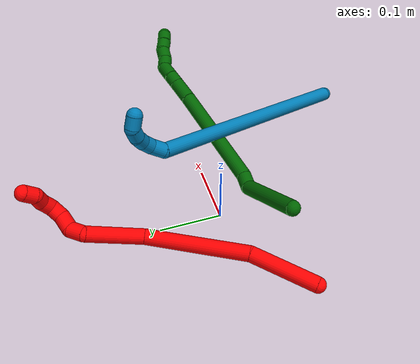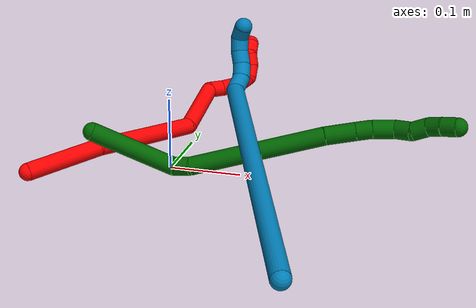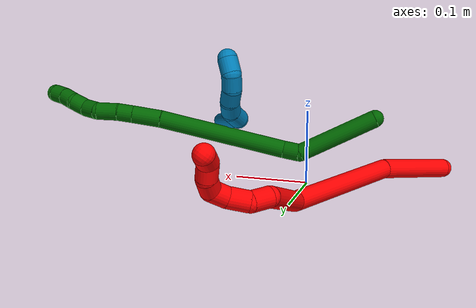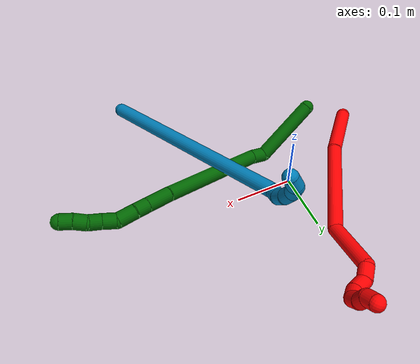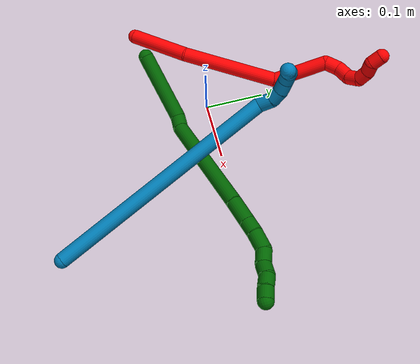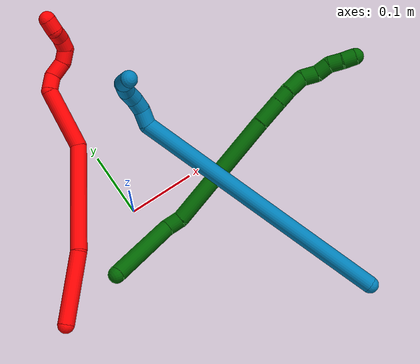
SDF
<sdf version="1.7">
 <world name="default">
  <model name="2">
   <static>0</static>
   <link name="2">
    <collision name="collision-cylinder-e_1_1_4">
     <pose>0.020639 0.041918 0.026023 -1.01521 0.3962 -0.222382</pose>
     <geometry><cylinder><radius>0.0125</radius><length>0.106963</length></cylinder></geometry>
     <surface>
      <friction><ode><mu>1.16</mu><mu2>1.16</mu2><slip1>0</slip1><slip2>0</slip2></ode></friction>
      <contact><ode><kp>1e+06</kp><kd>1</kd><max_vel>0</max_vel><min_depth>0.001</min_depth></ode></contact>
     </surface>
    </collision>
    <visual name="visual-cylinder-e_1_1_4">
     <pose>0.020639 0.041918 0.026023 -1.01521 0.3962 -0.222382</pose>
     <geometry><cylinder><radius>0.0125</radius><length>0.106963</length></cylinder></geometry>
     <material><ambient>1 0 0 1</ambient></material>
    </visual>
    <collision name="collision-cylinder-e_2_4_5">
     <pose>0.08618 0.13313 0.102124 -0.777509 0.568593 -0.238246</pose>
     <geometry><cylinder><radius>0.0125</radius><length>0.166779</length></cylinder></geometry>
     <surface>
      <friction><ode><mu>1.16</mu><mu2>1.16</mu2><slip1>0</slip1><slip2>0</slip2></ode></friction>
      <contact><ode><kp>1e+06</kp><kd>1</kd><max_vel>0</max_vel><min_depth>0.001</min_depth></ode></contact>
     </surface>
    </collision>
    <visual name="visual-cylinder-e_2_4_5">
     <pose>0.08618 0.13313 0.102124 -0.777509 0.568593 -0.238246</pose>
     <geometry><cylinder><radius>0.0125</radius><length>0.166779</length></cylinder></geometry>
     <material><ambient>1 0 0 1</ambient></material>
    </visual>
    <collision name="collision-cylinder-e_3_5_6">
     <pose>0.170591 0.206914 0.156373 -1.40211 1.00949 -0.872727</pose>
     <geometry><cylinder><radius>0.0125</radius><length>0.093343</length></cylinder></geometry>
     <surface>
      <friction><ode><mu>1.16</mu><mu2>1.16</mu2><slip1>0</slip1><slip2>0</slip2></ode></friction>
      <contact><ode><kp>1e+06</kp><kd>1</kd><max_vel>0</max_vel><min_depth>0.001</min_depth></ode></contact>
     </surface>
    </collision>
    <visual name="visual-cylinder-e_3_5_6">
     <pose>0.170591 0.206914 0.156373 -1.40211 1.00949 -0.872727</pose>
     <geometry><cylinder><radius>0.0125</radius><length>0.093343</length></cylinder></geometry>
     <material><ambient>1 0 0 1</ambient></material>
    </visual>
    <collision name="collision-cylinder-e_4_6_7">
     <pose>0.214965 0.239687 0.16857 -0.80116 0.399091 -0.170869</pose>
     <geometry><cylinder><radius>0.0125</radius><length>0.025035</length></cylinder></geometry>
     <surface>
      <friction><ode><mu>1.16</mu><mu2>1.16</mu2><slip1>0</slip1><slip2>0</slip2></ode></friction>
      <contact><ode><kp>1e+06</kp><kd>1</kd><max_vel>0</max_vel><min_depth>0.001</min_depth></ode></contact>
     </surface>
    </collision>
    <visual name="visual-cylinder-e_4_6_7">
     <pose>0.214965 0.239687 0.16857 -0.80116 0.399091 -0.170869</pose>
     <geometry><cylinder><radius>0.0125</radius><length>0.025035</length></cylinder></geometry>
     <material><ambient>1 0 0 1</ambient></material>
    </visual>
    <collision name="collision-cylinder-e_5_7_8">
     <pose>0.218683 0.259887 0.18207 -1.14022 -0.087178 0.055912</pose>
     <geometry><cylinder><radius>0.0125</radius><length>0.026329</length></cylinder></geometry>
     <surface>
      <friction><ode><mu>1.16</mu><mu2>1.16</mu2><slip1>0</slip1><slip2>0</slip2></ode></friction>
      <contact><ode><kp>1e+06</kp><kd>1</kd><max_vel>0</max_vel><min_depth>0.001</min_depth></ode></contact>
     </surface>
    </collision>
    <visual name="visual-cylinder-e_5_7_8">
     <pose>0.218683 0.259887 0.18207 -1.14022 -0.087178 0.055912</pose>
     <geometry><cylinder><radius>0.0125</radius><length>0.026329</length></cylinder></geometry>
     <material><ambient>1 0 0 1</ambient></material>
    </visual>
    <collision name="collision-cylinder-e_6_8_9">
     <pose>0.220641 0.281717 0.189249 -1.40045 0.299357 -0.252806</pose>
     <geometry><cylinder><radius>0.0125</radius><length>0.021053</length></cylinder></geometry>
     <surface>
      <friction><ode><mu>1.16</mu><mu2>1.16</mu2><slip1>0</slip1><slip2>0</slip2></ode></friction>
      <contact><ode><kp>1e+06</kp><kd>1</kd><max_vel>0</max_vel><min_depth>0.001</min_depth></ode></contact>
     </surface>
    </collision>
    <visual name="visual-cylinder-e_6_8_9">
     <pose>0.220641 0.281717 0.189249 -1.40045 0.299357 -0.252806</pose>
     <geometry><cylinder><radius>0.0125</radius><length>0.021053</length></cylinder></geometry>
     <material><ambient>1 0 0 1</ambient></material>
    </visual>
    <collision name="collision-cylinder-e_7_9_10">
     <pose>0.229999 0.298334 0.186585 -2.14833 0.663363 -1.13224</pose>
     <geometry><cylinder><radius>0.0125</radius><length>0.020312</length></cylinder></geometry>
     <surface>
      <friction><ode><mu>1.16</mu><mu2>1.16</mu2><slip1>0</slip1><slip2>0</slip2></ode></friction>
      <contact><ode><kp>1e+06</kp><kd>1</kd><max_vel>0</max_vel><min_depth>0.001</min_depth></ode></contact>
     </surface>
    </collision>
    <visual name="visual-cylinder-e_7_9_10">
     <pose>0.229999 0.298334 0.186585 -2.14833 0.663363 -1.13224</pose>
     <geometry><cylinder><radius>0.0125</radius><length>0.020312</length></cylinder></geometry>
     <material><ambient>1 0 0 1</ambient></material>
    </visual>
    <collision name="collision-cylinder-e_8_10_11">
     <pose>0.240359 0.310137 0.174617 -2.55071 0.42184 -1.22613</pose>
     <geometry><cylinder><radius>0.0125</radius><length>0.02006</length></cylinder></geometry>
     <surface>
      <friction><ode><mu>1.16</mu><mu2>1.16</mu2><slip1>0</slip1><slip2>0</slip2></ode></friction>
      <contact><ode><kp>1e+06</kp><kd>1</kd><max_vel>0</max_vel><min_depth>0.001</min_depth></ode></contact>
     </surface>
    </collision>
    <visual name="visual-cylinder-e_8_10_11">
     <pose>0.240359 0.310137 0.174617 -2.55071 0.42184 -1.22613</pose>
     <geometry><cylinder><radius>0.0125</radius><length>0.02006</length></cylinder></geometry>
     <material><ambient>1 0 0 1</ambient></material>
    </visual>
    <collision name="collision-cylinder-e_9_11_2">
     <pose>0.252441 0.320739 0.164303 -2.029 0.914829 -1.33922</pose>
     <geometry><cylinder><radius>0.0125</radius><length>0.020126</length></cylinder></geometry>
     <surface>
      <friction><ode><mu>1.16</mu><mu2>1.16</mu2><slip1>0</slip1><slip2>0</slip2></ode></friction>
      <contact><ode><kp>1e+06</kp><kd>1</kd><max_vel>0</max_vel><min_depth>0.001</min_depth></ode></contact>
     </surface>
    </collision>
    <visual name="visual-cylinder-e_9_11_2">
     <pose>0.252441 0.320739 0.164303 -2.029 0.914829 -1.33922</pose>
     <geometry><cylinder><radius>0.0125</radius><length>0.020126</length></cylinder></geometry>
     <material><ambient>1 0 0 1</ambient></material>
    </visual>
    <collision name="collision-sphere-2">
     <pose>0.260415 0.326244 0.161588 0 -0 0</pose>
     <geometry><sphere><radius>0.0125</radius></sphere></geometry>
     <surface>
      <friction><ode><mu>1.16</mu><mu2>1.16</mu2><slip1>0</slip1><slip2>0</slip2></ode></friction>
      <contact><ode><kp>1e+06</kp><kd>1</kd><max_vel>0</max_vel><min_depth>0.001</min_depth></ode></contact>
     </surface>
    </collision>
    <visual name="visual-sphere-2">
     <pose>0.260415 0.326244 0.161588 0 -0 0</pose>
     <geometry><sphere><radius>0.0125</radius></sphere></geometry>
     <material><ambient>1 0 0 1</ambient></material>
    </visual>
    <collision name="collision-sphere-11">
     <pose>0.244466 0.315235 0.167018 0 -0 0</pose>
     <geometry><sphere><radius>0.0125</radius></sphere></geometry>
     <surface>
      <friction><ode><mu>1.16</mu><mu2>1.16</mu2><slip1>0</slip1><slip2>0</slip2></ode></friction>
      <contact><ode><kp>1e+06</kp><kd>1</kd><max_vel>0</max_vel><min_depth>0.001</min_depth></ode></contact>
     </surface>
    </collision>
    <visual name="visual-sphere-11">
     <pose>0.244466 0.315235 0.167018 0 -0 0</pose>
     <geometry><sphere><radius>0.0125</radius></sphere></geometry>
     <material><ambient>1 0 0 1</ambient></material>
    </visual>
    <collision name="collision-sphere-10">
     <pose>0.236253 0.305039 0.182216 0 -0 0</pose>
     <geometry><sphere><radius>0.0125</radius></sphere></geometry>
     <surface>
      <friction><ode><mu>1.16</mu><mu2>1.16</mu2><slip1>0</slip1><slip2>0</slip2></ode></friction>
      <contact><ode><kp>1e+06</kp><kd>1</kd><max_vel>0</max_vel><min_depth>0.001</min_depth></ode></contact>
     </surface>
    </collision>
    <visual name="visual-sphere-10">
     <pose>0.236253 0.305039 0.182216 0 -0 0</pose>
     <geometry><sphere><radius>0.0125</radius></sphere></geometry>
     <material><ambient>1 0 0 1</ambient></material>
    </visual>
    <collision name="collision-sphere-9">
     <pose>0.223745 0.29163 0.190954 0 -0 0</pose>
     <geometry><sphere><radius>0.0125</radius></sphere></geometry>
     <surface>
      <friction><ode><mu>1.16</mu><mu2>1.16</mu2><slip1>0</slip1><slip2>0</slip2></ode></friction>
      <contact><ode><kp>1e+06</kp><kd>1</kd><max_vel>0</max_vel><min_depth>0.001</min_depth></ode></contact>
     </surface>
    </collision>
    <visual name="visual-sphere-9">
     <pose>0.223745 0.29163 0.190954 0 -0 0</pose>
     <geometry><sphere><radius>0.0125</radius></sphere></geometry>
     <material><ambient>1 0 0 1</ambient></material>
    </visual>
    <collision name="collision-sphere-4">
     <pose>0.041279 0.083836 0.052046 0 -0 0</pose>
     <geometry><sphere><radius>0.0125</radius></sphere></geometry>
     <surface>
      <friction><ode><mu>1.16</mu><mu2>1.16</mu2><slip1>0</slip1><slip2>0</slip2></ode></friction>
      <contact><ode><kp>1e+06</kp><kd>1</kd><max_vel>0</max_vel><min_depth>0.001</min_depth></ode></contact>
     </surface>
    </collision>
    <visual name="visual-sphere-4">
     <pose>0.041279 0.083836 0.052046 0 -0 0</pose>
     <geometry><sphere><radius>0.0125</radius></sphere></geometry>
     <material><ambient>1 0 0 1</ambient></material>
    </visual>
    <collision name="collision-sphere-1">
     <geometry><sphere><radius>0.0125</radius></sphere></geometry>
     <surface>
      <friction><ode><mu>1.16</mu><mu2>1.16</mu2><slip1>0</slip1><slip2>0</slip2></ode></friction>
      <contact><ode><kp>1e+06</kp><kd>1</kd><max_vel>0</max_vel><min_depth>0.001</min_depth></ode></contact>
     </surface>
    </collision>
    <visual name="visual-sphere-1">
     <geometry><sphere><radius>0.0125</radius></sphere></geometry>
     <material><ambient>1 0 0 1</ambient></material>
    </visual>
    <collision name="collision-sphere-8">
     <pose>0.217536 0.271805 0.187544 0 -0 0</pose>
     <geometry><sphere><radius>0.0125</radius></sphere></geometry>
     <surface>
      <friction><ode><mu>1.16</mu><mu2>1.16</mu2><slip1>0</slip1><slip2>0</slip2></ode></friction>
      <contact><ode><kp>1e+06</kp><kd>1</kd><max_vel>0</max_vel><min_depth>0.001</min_depth></ode></contact>
     </surface>
    </collision>
    <visual name="visual-sphere-8">
     <pose>0.217536 0.271805 0.187544 0 -0 0</pose>
     <geometry><sphere><radius>0.0125</radius></sphere></geometry>
     <material><ambient>1 0 0 1</ambient></material>
    </visual>
    <collision name="collision-sphere-5">
     <pose>0.13108 0.182424 0.152202 0 -0 0</pose>
     <geometry><sphere><radius>0.0125</radius></sphere></geometry>
     <surface>
      <friction><ode><mu>1.16</mu><mu2>1.16</mu2><slip1>0</slip1><slip2>0</slip2></ode></friction>
      <contact><ode><kp>1e+06</kp><kd>1</kd><max_vel>0</max_vel><min_depth>0.001</min_depth></ode></contact>
     </surface>
    </collision>
    <visual name="visual-sphere-5">
     <pose>0.13108 0.182424 0.152202 0 -0 0</pose>
     <geometry><sphere><radius>0.0125</radius></sphere></geometry>
     <material><ambient>1 0 0 1</ambient></material>
    </visual>
    <collision name="collision-sphere-6">
     <pose>0.210101 0.231404 0.160544 0 -0 0</pose>
     <geometry><sphere><radius>0.0125</radius></sphere></geometry>
     <surface>
      <friction><ode><mu>1.16</mu><mu2>1.16</mu2><slip1>0</slip1><slip2>0</slip2></ode></friction>
      <contact><ode><kp>1e+06</kp><kd>1</kd><max_vel>0</max_vel><min_depth>0.001</min_depth></ode></contact>
     </surface>
    </collision>
    <visual name="visual-sphere-6">
     <pose>0.210101 0.231404 0.160544 0 -0 0</pose>
     <geometry><sphere><radius>0.0125</radius></sphere></geometry>
     <material><ambient>1 0 0 1</ambient></material>
    </visual>
    <collision name="collision-sphere-7">
     <pose>0.219829 0.24797 0.176596 0 -0 0</pose>
     <geometry><sphere><radius>0.0125</radius></sphere></geometry>
     <surface>
      <friction><ode><mu>1.16</mu><mu2>1.16</mu2><slip1>0</slip1><slip2>0</slip2></ode></friction>
      <contact><ode><kp>1e+06</kp><kd>1</kd><max_vel>0</max_vel><min_depth>0.001</min_depth></ode></contact>
     </surface>
    </collision>
    <visual name="visual-sphere-7">
     <pose>0.219829 0.24797 0.176596 0 -0 0</pose>
     <geometry><sphere><radius>0.0125</radius></sphere></geometry>
     <material><ambient>1 0 0 1</ambient></material>
    </visual>
    <inertial>
     <pose>0.125725 0.167023 0.116019 0 -0 0</pose>
     <mass>0.5</mass>
     <inertia>
      <ixx>0.000337</ixx>
      <ixy>0</ixy>
      <ixz>0</ixz>
      <iyy>0.00032</iyy>
      <iyz>0</iyz>
      <izz>-0.000665</izz>
     </inertia>
    </inertial>
   </link>
   <pose>-0.173597 -0.091282 0.011487 2.49207 -0.109748 2.01128</pose>
  </model>
  <model name="6">
   <static>0</static>
   <link name="6">
    <collision name="collision-cylinder-e_1_1_4">
     <pose>-0.00577 0.012099 -0.056625 -2.93109 -0.099313 0.87942</pose>
     <geometry><cylinder><radius>0.0125</radius><length>0.11638</length></cylinder></geometry>
     <surface>
      <friction><ode><mu>1.16</mu><mu2>1.16</mu2><slip1>0</slip1><slip2>0</slip2></ode></friction>
      <contact><ode><kp>1e+06</kp><kd>1</kd><max_vel>0</max_vel><min_depth>0.001</min_depth></ode></contact>
     </surface>
    </collision>
    <visual name="visual-cylinder-e_1_1_4">
     <pose>-0.00577 0.012099 -0.056625 -2.93109 -0.099313 0.87942</pose>
     <geometry><cylinder><radius>0.0125</radius><length>0.11638</length></cylinder></geometry>
     <material><ambient>0 0.392157 0.003922 1</ambient></material>
    </visual>
    <collision name="collision-cylinder-e_2_4_5">
     <pose>-0.005911 0.023276 -0.123942 3.05558 0.482969 2.79563</pose>
     <geometry><cylinder><radius>0.0125</radius><length>0.024235</length></cylinder></geometry>
     <surface>
      <friction><ode><mu>1.16</mu><mu2>1.16</mu2><slip1>0</slip1><slip2>0</slip2></ode></friction>
      <contact><ode><kp>1e+06</kp><kd>1</kd><max_vel>0</max_vel><min_depth>0.001</min_depth></ode></contact>
     </surface>
    </collision>
    <visual name="visual-cylinder-e_2_4_5">
     <pose>-0.005911 0.023276 -0.123942 3.05558 0.482969 2.79563</pose>
     <geometry><cylinder><radius>0.0125</radius><length>0.024235</length></cylinder></geometry>
     <material><ambient>0 0.392157 0.003922 1</ambient></material>
    </visual>
    <collision name="collision-cylinder-e_3_5_6">
     <pose>0.049972 0.041485 -0.208136 -2.88697 0.584545 -2.33714</pose>
     <geometry><cylinder><radius>0.0125</radius><length>0.182147</length></cylinder></geometry>
     <surface>
      <friction><ode><mu>1.16</mu><mu2>1.16</mu2><slip1>0</slip1><slip2>0</slip2></ode></friction>
      <contact><ode><kp>1e+06</kp><kd>1</kd><max_vel>0</max_vel><min_depth>0.001</min_depth></ode></contact>
     </surface>
    </collision>
    <visual name="visual-cylinder-e_3_5_6">
     <pose>0.049972 0.041485 -0.208136 -2.88697 0.584545 -2.33714</pose>
     <geometry><cylinder><radius>0.0125</radius><length>0.182147</length></cylinder></geometry>
     <material><ambient>0 0.392157 0.003922 1</ambient></material>
    </visual>
    <collision name="collision-cylinder-e_4_6_7">
     <pose>0.110033 0.064739 -0.298863 -2.90664 0.505638 -2.28456</pose>
     <geometry><cylinder><radius>0.0125</radius><length>0.040486</length></cylinder></geometry>
     <surface>
      <friction><ode><mu>1.16</mu><mu2>1.16</mu2><slip1>0</slip1><slip2>0</slip2></ode></friction>
      <contact><ode><kp>1e+06</kp><kd>1</kd><max_vel>0</max_vel><min_depth>0.001</min_depth></ode></contact>
     </surface>
    </collision>
    <visual name="visual-cylinder-e_4_6_7">
     <pose>0.110033 0.064739 -0.298863 -2.90664 0.505638 -2.28456</pose>
     <geometry><cylinder><radius>0.0125</radius><length>0.040486</length></cylinder></geometry>
     <material><ambient>0 0.392157 0.003922 1</ambient></material>
    </visual>
    <collision name="collision-cylinder-e_5_7_8">
     <pose>0.124955 0.071089 -0.325367 -2.90609 0.492158 -2.26126</pose>
     <geometry><cylinder><radius>0.0125</radius><length>0.021659</length></cylinder></geometry>
     <surface>
      <friction><ode><mu>1.16</mu><mu2>1.16</mu2><slip1>0</slip1><slip2>0</slip2></ode></friction>
      <contact><ode><kp>1e+06</kp><kd>1</kd><max_vel>0</max_vel><min_depth>0.001</min_depth></ode></contact>
     </surface>
    </collision>
    <visual name="visual-cylinder-e_5_7_8">
     <pose>0.124955 0.071089 -0.325367 -2.90609 0.492158 -2.26126</pose>
     <geometry><cylinder><radius>0.0125</radius><length>0.021659</length></cylinder></geometry>
     <material><ambient>0 0.392157 0.003922 1</ambient></material>
    </visual>
    <collision name="collision-cylinder-e_6_8_9">
     <pose>0.135596 0.075475 -0.348352 -2.98531 0.378868 -2.36617</pose>
     <geometry><cylinder><radius>0.0125</radius><length>0.029865</length></cylinder></geometry>
     <surface>
      <friction><ode><mu>1.16</mu><mu2>1.16</mu2><slip1>0</slip1><slip2>0</slip2></ode></friction>
      <contact><ode><kp>1e+06</kp><kd>1</kd><max_vel>0</max_vel><min_depth>0.001</min_depth></ode></contact>
     </surface>
    </collision>
    <visual name="visual-cylinder-e_6_8_9">
     <pose>0.135596 0.075475 -0.348352 -2.98531 0.378868 -2.36617</pose>
     <geometry><cylinder><radius>0.0125</radius><length>0.029865</length></cylinder></geometry>
     <material><ambient>0 0.392157 0.003922 1</ambient></material>
    </visual>
    <collision name="collision-cylinder-e_7_9_10">
     <pose>0.145898 0.073336 -0.371907 2.73016 0.418363 1.58798</pose>
     <geometry><cylinder><radius>0.0125</radius><length>0.023526</length></cylinder></geometry>
     <surface>
      <friction><ode><mu>1.16</mu><mu2>1.16</mu2><slip1>0</slip1><slip2>0</slip2></ode></friction>
      <contact><ode><kp>1e+06</kp><kd>1</kd><max_vel>0</max_vel><min_depth>0.001</min_depth></ode></contact>
     </surface>
    </collision>
    <visual name="visual-cylinder-e_7_9_10">
     <pose>0.145898 0.073336 -0.371907 2.73016 0.418363 1.58798</pose>
     <geometry><cylinder><radius>0.0125</radius><length>0.023526</length></cylinder></geometry>
     <material><ambient>0 0.392157 0.003922 1</ambient></material>
    </visual>
    <collision name="collision-cylinder-e_8_10_11">
     <pose>0.158056 0.0683 -0.389597 3.04781 0.753062 2.90533</pose>
     <geometry><cylinder><radius>0.0125</radius><length>0.02158</length></cylinder></geometry>
     <surface>
      <friction><ode><mu>1.16</mu><mu2>1.16</mu2><slip1>0</slip1><slip2>0</slip2></ode></friction>
      <contact><ode><kp>1e+06</kp><kd>1</kd><max_vel>0</max_vel><min_depth>0.001</min_depth></ode></contact>
     </surface>
    </collision>
    <visual name="visual-cylinder-e_8_10_11">
     <pose>0.158056 0.0683 -0.389597 3.04781 0.753062 2.90533</pose>
     <geometry><cylinder><radius>0.0125</radius><length>0.02158</length></cylinder></geometry>
     <material><ambient>0 0.392157 0.003922 1</ambient></material>
    </visual>
    <collision name="collision-cylinder-e_9_11_12">
     <pose>0.170912 0.063365 -0.404718 2.61872 0.577465 1.6751</pose>
     <geometry><cylinder><radius>0.0125</radius><length>0.020066</length></cylinder></geometry>
     <surface>
      <friction><ode><mu>1.16</mu><mu2>1.16</mu2><slip1>0</slip1><slip2>0</slip2></ode></friction>
      <contact><ode><kp>1e+06</kp><kd>1</kd><max_vel>0</max_vel><min_depth>0.001</min_depth></ode></contact>
     </surface>
    </collision>
    <visual name="visual-cylinder-e_9_11_12">
     <pose>0.170912 0.063365 -0.404718 2.61872 0.577465 1.6751</pose>
     <geometry><cylinder><radius>0.0125</radius><length>0.020066</length></cylinder></geometry>
     <material><ambient>0 0.392157 0.003922 1</ambient></material>
    </visual>
    <collision name="collision-cylinder-e_10_12_2">
     <pose>0.181109 0.055907 -0.420226 2.76425 0.490109 1.8374</pose>
     <geometry><cylinder><radius>0.0125</radius><length>0.020057</length></cylinder></geometry>
     <surface>
      <friction><ode><mu>1.16</mu><mu2>1.16</mu2><slip1>0</slip1><slip2>0</slip2></ode></friction>
      <contact><ode><kp>1e+06</kp><kd>1</kd><max_vel>0</max_vel><min_depth>0.001</min_depth></ode></contact>
     </surface>
    </collision>
    <visual name="visual-cylinder-e_10_12_2">
     <pose>0.181109 0.055907 -0.420226 2.76425 0.490109 1.8374</pose>
     <geometry><cylinder><radius>0.0125</radius><length>0.020057</length></cylinder></geometry>
     <material><ambient>0 0.392157 0.003922 1</ambient></material>
    </visual>
    <collision name="collision-sphere-2">
     <pose>0.18583 0.052647 -0.428452 0 -0 0</pose>
     <geometry><sphere><radius>0.0125</radius></sphere></geometry>
     <surface>
      <friction><ode><mu>1.16</mu><mu2>1.16</mu2><slip1>0</slip1><slip2>0</slip2></ode></friction>
      <contact><ode><kp>1e+06</kp><kd>1</kd><max_vel>0</max_vel><min_depth>0.001</min_depth></ode></contact>
     </surface>
    </collision>
    <visual name="visual-sphere-2">
     <pose>0.18583 0.052647 -0.428452 0 -0 0</pose>
     <geometry><sphere><radius>0.0125</radius></sphere></geometry>
     <material><ambient>0 0.392157 0.003922 1</ambient></material>
    </visual>
    <collision name="collision-sphere-12">
     <pose>0.176389 0.059167 -0.412 0 -0 0</pose>
     <geometry><sphere><radius>0.0125</radius></sphere></geometry>
     <surface>
      <friction><ode><mu>1.16</mu><mu2>1.16</mu2><slip1>0</slip1><slip2>0</slip2></ode></friction>
      <contact><ode><kp>1e+06</kp><kd>1</kd><max_vel>0</max_vel><min_depth>0.001</min_depth></ode></contact>
     </surface>
    </collision>
    <visual name="visual-sphere-12">
     <pose>0.176389 0.059167 -0.412 0 -0 0</pose>
     <geometry><sphere><radius>0.0125</radius></sphere></geometry>
     <material><ambient>0 0.392157 0.003922 1</ambient></material>
    </visual>
    <collision name="collision-sphere-11">
     <pose>0.165435 0.067563 -0.397435 0 -0 0</pose>
     <geometry><sphere><radius>0.0125</radius></sphere></geometry>
     <surface>
      <friction><ode><mu>1.16</mu><mu2>1.16</mu2><slip1>0</slip1><slip2>0</slip2></ode></friction>
      <contact><ode><kp>1e+06</kp><kd>1</kd><max_vel>0</max_vel><min_depth>0.001</min_depth></ode></contact>
     </surface>
    </collision>
    <visual name="visual-sphere-11">
     <pose>0.165435 0.067563 -0.397435 0 -0 0</pose>
     <geometry><sphere><radius>0.0125</radius></sphere></geometry>
     <material><ambient>0 0.392157 0.003922 1</ambient></material>
    </visual>
    <collision name="collision-sphere-10">
     <pose>0.150676 0.069037 -0.381759 0 -0 0</pose>
     <geometry><sphere><radius>0.0125</radius></sphere></geometry>
     <surface>
      <friction><ode><mu>1.16</mu><mu2>1.16</mu2><slip1>0</slip1><slip2>0</slip2></ode></friction>
      <contact><ode><kp>1e+06</kp><kd>1</kd><max_vel>0</max_vel><min_depth>0.001</min_depth></ode></contact>
     </surface>
    </collision>
    <visual name="visual-sphere-10">
     <pose>0.150676 0.069037 -0.381759 0 -0 0</pose>
     <geometry><sphere><radius>0.0125</radius></sphere></geometry>
     <material><ambient>0 0.392157 0.003922 1</ambient></material>
    </visual>
    <collision name="collision-sphere-9">
     <pose>0.141119 0.077634 -0.362056 0 -0 0</pose>
     <geometry><sphere><radius>0.0125</radius></sphere></geometry>
     <surface>
      <friction><ode><mu>1.16</mu><mu2>1.16</mu2><slip1>0</slip1><slip2>0</slip2></ode></friction>
      <contact><ode><kp>1e+06</kp><kd>1</kd><max_vel>0</max_vel><min_depth>0.001</min_depth></ode></contact>
     </surface>
    </collision>
    <visual name="visual-sphere-9">
     <pose>0.141119 0.077634 -0.362056 0 -0 0</pose>
     <geometry><sphere><radius>0.0125</radius></sphere></geometry>
     <material><ambient>0 0.392157 0.003922 1</ambient></material>
    </visual>
    <collision name="collision-sphere-4">
     <pose>-0.011539 0.024198 -0.11325 0 -0 0</pose>
     <geometry><sphere><radius>0.0125</radius></sphere></geometry>
     <surface>
      <friction><ode><mu>1.16</mu><mu2>1.16</mu2><slip1>0</slip1><slip2>0</slip2></ode></friction>
      <contact><ode><kp>1e+06</kp><kd>1</kd><max_vel>0</max_vel><min_depth>0.001</min_depth></ode></contact>
     </surface>
    </collision>
    <visual name="visual-sphere-4">
     <pose>-0.011539 0.024198 -0.11325 0 -0 0</pose>
     <geometry><sphere><radius>0.0125</radius></sphere></geometry>
     <material><ambient>0 0.392157 0.003922 1</ambient></material>
    </visual>
    <collision name="collision-sphere-1">
     <geometry><sphere><radius>0.0125</radius></sphere></geometry>
     <surface>
      <friction><ode><mu>1.16</mu><mu2>1.16</mu2><slip1>0</slip1><slip2>0</slip2></ode></friction>
      <contact><ode><kp>1e+06</kp><kd>1</kd><max_vel>0</max_vel><min_depth>0.001</min_depth></ode></contact>
     </surface>
    </collision>
    <visual name="visual-sphere-1">
     <geometry><sphere><radius>0.0125</radius></sphere></geometry>
     <material><ambient>0 0.392157 0.003922 1</ambient></material>
    </visual>
    <collision name="collision-sphere-8">
     <pose>0.130073 0.073316 -0.334647 0 -0 0</pose>
     <geometry><sphere><radius>0.0125</radius></sphere></geometry>
     <surface>
      <friction><ode><mu>1.16</mu><mu2>1.16</mu2><slip1>0</slip1><slip2>0</slip2></ode></friction>
      <contact><ode><kp>1e+06</kp><kd>1</kd><max_vel>0</max_vel><min_depth>0.001</min_depth></ode></contact>
     </surface>
    </collision>
    <visual name="visual-sphere-8">
     <pose>0.130073 0.073316 -0.334647 0 -0 0</pose>
     <geometry><sphere><radius>0.0125</radius></sphere></geometry>
     <material><ambient>0 0.392157 0.003922 1</ambient></material>
    </visual>
    <collision name="collision-sphere-5">
     <pose>-0.000284 0.022354 -0.134633 0 -0 0</pose>
     <geometry><sphere><radius>0.0125</radius></sphere></geometry>
     <surface>
      <friction><ode><mu>1.16</mu><mu2>1.16</mu2><slip1>0</slip1><slip2>0</slip2></ode></friction>
      <contact><ode><kp>1e+06</kp><kd>1</kd><max_vel>0</max_vel><min_depth>0.001</min_depth></ode></contact>
     </surface>
    </collision>
    <visual name="visual-sphere-5">
     <pose>-0.000284 0.022354 -0.134633 0 -0 0</pose>
     <geometry><sphere><radius>0.0125</radius></sphere></geometry>
     <material><ambient>0 0.392157 0.003922 1</ambient></material>
    </visual>
    <collision name="collision-sphere-6">
     <pose>0.100228 0.060616 -0.281639 0 -0 0</pose>
     <geometry><sphere><radius>0.0125</radius></sphere></geometry>
     <surface>
      <friction><ode><mu>1.16</mu><mu2>1.16</mu2><slip1>0</slip1><slip2>0</slip2></ode></friction>
      <contact><ode><kp>1e+06</kp><kd>1</kd><max_vel>0</max_vel><min_depth>0.001</min_depth></ode></contact>
     </surface>
    </collision>
    <visual name="visual-sphere-6">
     <pose>0.100228 0.060616 -0.281639 0 -0 0</pose>
     <geometry><sphere><radius>0.0125</radius></sphere></geometry>
     <material><ambient>0 0.392157 0.003922 1</ambient></material>
    </visual>
    <collision name="collision-sphere-7">
     <pose>0.119838 0.068862 -0.316086 0 -0 0</pose>
     <geometry><sphere><radius>0.0125</radius></sphere></geometry>
     <surface>
      <friction><ode><mu>1.16</mu><mu2>1.16</mu2><slip1>0</slip1><slip2>0</slip2></ode></friction>
      <contact><ode><kp>1e+06</kp><kd>1</kd><max_vel>0</max_vel><min_depth>0.001</min_depth></ode></contact>
     </surface>
    </collision>
    <visual name="visual-sphere-7">
     <pose>0.119838 0.068862 -0.316086 0 -0 0</pose>
     <geometry><sphere><radius>0.0125</radius></sphere></geometry>
     <material><ambient>0 0.392157 0.003922 1</ambient></material>
    </visual>
    <inertial>
     <pose>0.066807 0.043071 -0.221524 0 -0 0</pose>
     <mass>0.5</mass>
     <inertia>
      <ixx>-0.000411</ixx>
      <ixy>0</ixy>
      <ixz>0</ixz>
      <iyy>0.000124</iyy>
      <iyz>0</iyz>
      <izz>-0.000447</izz>
     </inertia>
    </inertial>
   </link>
   <pose>-0.077955 -0.085659 0.077102 0.051986 -1.2119 -0.003983</pose>
  </model>
  <model name="9">
   <static>0</static>
   <link name="9">
    <collision name="collision-cylinder-e_1_1_4">
     <pose>-0.082888 0.169914 -0.056962 -1.89426 -0.433219 0.593671</pose>
     <geometry><cylinder><radius>0.0125</radius><length>0.394897</length></cylinder></geometry>
     <surface>
      <friction><ode><mu>1.16</mu><mu2>1.16</mu2><slip1>0</slip1><slip2>0</slip2></ode></friction>
      <contact><ode><kp>1e+06</kp><kd>1</kd><max_vel>0</max_vel><min_depth>0.001</min_depth></ode></contact>
     </surface>
    </collision>
    <visual name="visual-cylinder-e_1_1_4">
     <pose>-0.082888 0.169914 -0.056962 -1.89426 -0.433219 0.593671</pose>
     <geometry><cylinder><radius>0.0125</radius><length>0.394897</length></cylinder></geometry>
     <material><ambient>0 0.490196 0.709804 1</ambient></material>
    </visual>
    <collision name="collision-cylinder-e_2_4_5">
     <pose>-0.166004 0.351842 -0.112269 -1.43388 -0.018844 0.016426</pose>
     <geometry><cylinder><radius>0.0125</radius><length>0.024259</length></cylinder></geometry>
     <surface>
      <friction><ode><mu>1.16</mu><mu2>1.16</mu2><slip1>0</slip1><slip2>0</slip2></ode></friction>
      <contact><ode><kp>1e+06</kp><kd>1</kd><max_vel>0</max_vel><min_depth>0.001</min_depth></ode></contact>
     </surface>
    </collision>
    <visual name="visual-cylinder-e_2_4_5">
     <pose>-0.166004 0.351842 -0.112269 -1.43388 -0.018844 0.016426</pose>
     <geometry><cylinder><radius>0.0125</radius><length>0.024259</length></cylinder></geometry>
     <material><ambient>0 0.490196 0.709804 1</ambient></material>
    </visual>
    <collision name="collision-cylinder-e_3_5_6">
     <pose>-0.169991 0.372661 -0.106977 -1.17906 -0.375735 0.252961</pose>
     <geometry><cylinder><radius>0.0125</radius><length>0.020482</length></cylinder></geometry>
     <surface>
      <friction><ode><mu>1.16</mu><mu2>1.16</mu2><slip1>0</slip1><slip2>0</slip2></ode></friction>
      <contact><ode><kp>1e+06</kp><kd>1</kd><max_vel>0</max_vel><min_depth>0.001</min_depth></ode></contact>
     </surface>
    </collision>
    <visual name="visual-cylinder-e_3_5_6">
     <pose>-0.169991 0.372661 -0.106977 -1.17906 -0.375735 0.252961</pose>
     <geometry><cylinder><radius>0.0125</radius><length>0.020482</length></cylinder></geometry>
     <material><ambient>0 0.490196 0.709804 1</ambient></material>
    </visual>
    <collision name="collision-cylinder-e_4_6_7">
     <pose>-0.179051 0.388443 -0.098323 -0.947449 -0.552838 0.288839</pose>
     <geometry><cylinder><radius>0.0125</radius><length>0.020193</length></cylinder></geometry>
     <surface>
      <friction><ode><mu>1.16</mu><mu2>1.16</mu2><slip1>0</slip1><slip2>0</slip2></ode></friction>
      <contact><ode><kp>1e+06</kp><kd>1</kd><max_vel>0</max_vel><min_depth>0.001</min_depth></ode></contact>
     </surface>
    </collision>
    <visual name="visual-cylinder-e_4_6_7">
     <pose>-0.179051 0.388443 -0.098323 -0.947449 -0.552838 0.288839</pose>
     <geometry><cylinder><radius>0.0125</radius><length>0.020193</length></cylinder></geometry>
     <material><ambient>0 0.490196 0.709804 1</ambient></material>
    </visual>
    <collision name="collision-cylinder-e_5_7_8">
     <pose>-0.187812 0.401524 -0.086156 -0.706636 -0.352579 0.131204</pose>
     <geometry><cylinder><radius>0.0125</radius><length>0.020037</length></cylinder></geometry>
     <surface>
      <friction><ode><mu>1.16</mu><mu2>1.16</mu2><slip1>0</slip1><slip2>0</slip2></ode></friction>
      <contact><ode><kp>1e+06</kp><kd>1</kd><max_vel>0</max_vel><min_depth>0.001</min_depth></ode></contact>
     </surface>
    </collision>
    <visual name="visual-cylinder-e_5_7_8">
     <pose>-0.187812 0.401524 -0.086156 -0.706636 -0.352579 0.131204</pose>
     <geometry><cylinder><radius>0.0125</radius><length>0.020037</length></cylinder></geometry>
     <material><ambient>0 0.490196 0.709804 1</ambient></material>
    </visual>
    <collision name="collision-cylinder-e_6_8_2">
     <pose>-0.190577 0.40869 -0.06902 -0.105882 0.069105 -0.003663</pose>
     <geometry><cylinder><radius>0.0125</radius><length>0.020131</length></cylinder></geometry>
     <surface>
      <friction><ode><mu>1.16</mu><mu2>1.16</mu2><slip1>0</slip1><slip2>0</slip2></ode></friction>
      <contact><ode><kp>1e+06</kp><kd>1</kd><max_vel>0</max_vel><min_depth>0.001</min_depth></ode></contact>
     </surface>
    </collision>
    <visual name="visual-cylinder-e_6_8_2">
     <pose>-0.190577 0.40869 -0.06902 -0.105882 0.069105 -0.003663</pose>
     <geometry><cylinder><radius>0.0125</radius><length>0.020131</length></cylinder></geometry>
     <material><ambient>0 0.490196 0.709804 1</ambient></material>
    </visual>
    <collision name="collision-sphere-2">
     <pose>-0.189882 0.409752 -0.059035 0 -0 0</pose>
     <geometry><sphere><radius>0.0125</radius></sphere></geometry>
     <surface>
      <friction><ode><mu>1.16</mu><mu2>1.16</mu2><slip1>0</slip1><slip2>0</slip2></ode></friction>
      <contact><ode><kp>1e+06</kp><kd>1</kd><max_vel>0</max_vel><min_depth>0.001</min_depth></ode></contact>
     </surface>
    </collision>
    <visual name="visual-sphere-2">
     <pose>-0.189882 0.409752 -0.059035 0 -0 0</pose>
     <geometry><sphere><radius>0.0125</radius></sphere></geometry>
     <material><ambient>0 0.490196 0.709804 1</ambient></material>
    </visual>
    <collision name="collision-sphere-4">
     <pose>-0.165776 0.339829 -0.113924 0 -0 0</pose>
     <geometry><sphere><radius>0.0125</radius></sphere></geometry>
     <surface>
      <friction><ode><mu>1.16</mu><mu2>1.16</mu2><slip1>0</slip1><slip2>0</slip2></ode></friction>
      <contact><ode><kp>1e+06</kp><kd>1</kd><max_vel>0</max_vel><min_depth>0.001</min_depth></ode></contact>
     </surface>
    </collision>
    <visual name="visual-sphere-4">
     <pose>-0.165776 0.339829 -0.113924 0 -0 0</pose>
     <geometry><sphere><radius>0.0125</radius></sphere></geometry>
     <material><ambient>0 0.490196 0.709804 1</ambient></material>
    </visual>
    <collision name="collision-sphere-1">
     <geometry><sphere><radius>0.0125</radius></sphere></geometry>
     <surface>
      <friction><ode><mu>1.16</mu><mu2>1.16</mu2><slip1>0</slip1><slip2>0</slip2></ode></friction>
      <contact><ode><kp>1e+06</kp><kd>1</kd><max_vel>0</max_vel><min_depth>0.001</min_depth></ode></contact>
     </surface>
    </collision>
    <visual name="visual-sphere-1">
     <geometry><sphere><radius>0.0125</radius></sphere></geometry>
     <material><ambient>0 0.490196 0.709804 1</ambient></material>
    </visual>
    <collision name="collision-sphere-8">
     <pose>-0.191272 0.407629 -0.079005 0 -0 0</pose>
     <geometry><sphere><radius>0.0125</radius></sphere></geometry>
     <surface>
      <friction><ode><mu>1.16</mu><mu2>1.16</mu2><slip1>0</slip1><slip2>0</slip2></ode></friction>
      <contact><ode><kp>1e+06</kp><kd>1</kd><max_vel>0</max_vel><min_depth>0.001</min_depth></ode></contact>
     </surface>
    </collision>
    <visual name="visual-sphere-8">
     <pose>-0.191272 0.407629 -0.079005 0 -0 0</pose>
     <geometry><sphere><radius>0.0125</radius></sphere></geometry>
     <material><ambient>0 0.490196 0.709804 1</ambient></material>
    </visual>
    <collision name="collision-sphere-5">
     <pose>-0.166233 0.363856 -0.110614 0 -0 0</pose>
     <geometry><sphere><radius>0.0125</radius></sphere></geometry>
     <surface>
      <friction><ode><mu>1.16</mu><mu2>1.16</mu2><slip1>0</slip1><slip2>0</slip2></ode></friction>
      <contact><ode><kp>1e+06</kp><kd>1</kd><max_vel>0</max_vel><min_depth>0.001</min_depth></ode></contact>
     </surface>
    </collision>
    <visual name="visual-sphere-5">
     <pose>-0.166233 0.363856 -0.110614 0 -0 0</pose>
     <geometry><sphere><radius>0.0125</radius></sphere></geometry>
     <material><ambient>0 0.490196 0.709804 1</ambient></material>
    </visual>
    <collision name="collision-sphere-6">
     <pose>-0.173749 0.381466 -0.103339 0 -0 0</pose>
     <geometry><sphere><radius>0.0125</radius></sphere></geometry>
     <surface>
      <friction><ode><mu>1.16</mu><mu2>1.16</mu2><slip1>0</slip1><slip2>0</slip2></ode></friction>
      <contact><ode><kp>1e+06</kp><kd>1</kd><max_vel>0</max_vel><min_depth>0.001</min_depth></ode></contact>
     </surface>
    </collision>
    <visual name="visual-sphere-6">
     <pose>-0.173749 0.381466 -0.103339 0 -0 0</pose>
     <geometry><sphere><radius>0.0125</radius></sphere></geometry>
     <material><ambient>0 0.490196 0.709804 1</ambient></material>
    </visual>
    <collision name="collision-sphere-7">
     <pose>-0.184353 0.39542 -0.093307 0 -0 0</pose>
     <geometry><sphere><radius>0.0125</radius></sphere></geometry>
     <surface>
      <friction><ode><mu>1.16</mu><mu2>1.16</mu2><slip1>0</slip1><slip2>0</slip2></ode></friction>
      <contact><ode><kp>1e+06</kp><kd>1</kd><max_vel>0</max_vel><min_depth>0.001</min_depth></ode></contact>
     </surface>
    </collision>
    <visual name="visual-sphere-7">
     <pose>-0.184353 0.39542 -0.093307 0 -0 0</pose>
     <geometry><sphere><radius>0.0125</radius></sphere></geometry>
     <material><ambient>0 0.490196 0.709804 1</ambient></material>
    </visual>
    <inertial>
     <pose>-0.102913 0.214767 -0.06502 0 -0 0</pose>
     <mass>0.5</mass>
     <inertia>
      <ixx>0.006479</ixx>
      <ixy>0</ixy>
      <ixz>0</ixz>
      <iyy>0.002441</iyy>
      <iyz>0</iyz>
      <izz>-0.002277</izz>
     </inertia>
    </inertial>
   </link>
   <pose>0.2205 -0.288507 0.014007 0.425851 0.306357 -0.004753</pose>
  </model>
 </world>
</sdf>
